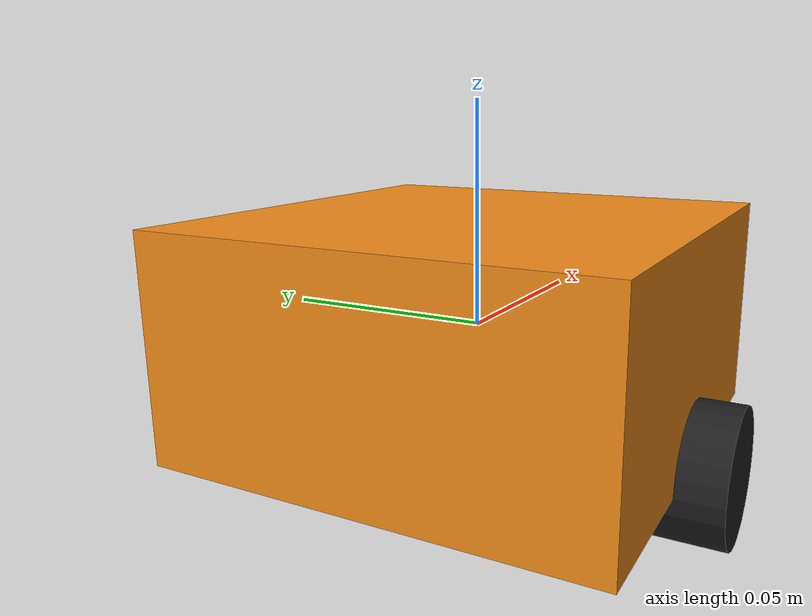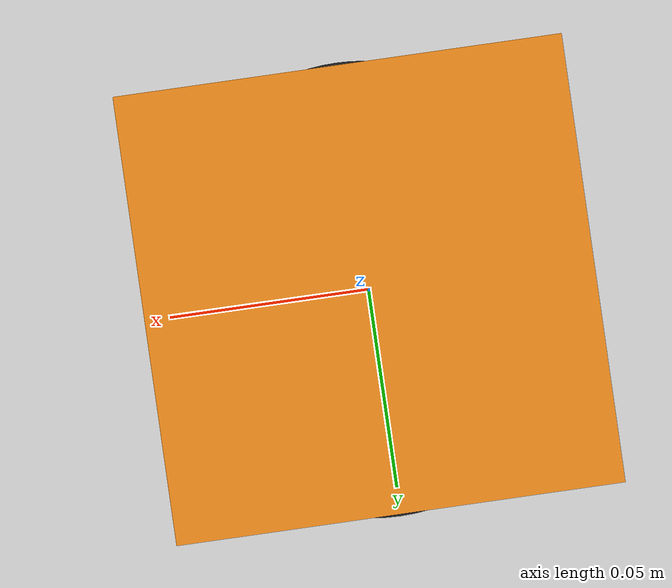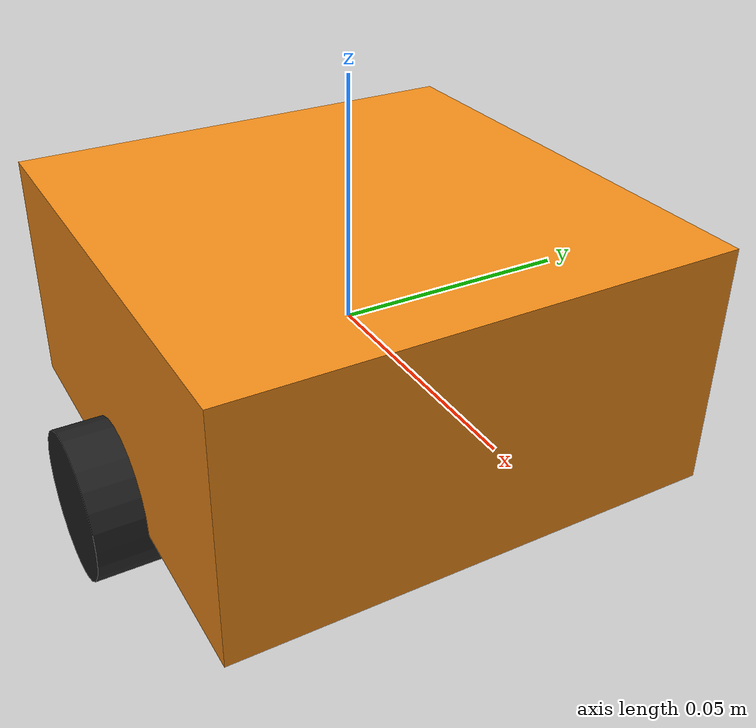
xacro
<?xml version="1.0"?>
<!-- Basic differential drive mobile base -->
<robot xmlns:xacro="http://www.ros.org/wiki/xacro" name="takagon">
  <!-- Enable setting arguments from the launch file -->
  <xacro:arg name="prefix" default=""/>

  <xacro:include filename="$(find inverted_pendulum_control)/config/inverted_pendulum.urdf.xacro"/>

  <xacro:include filename="$(find inverted_pendulum_control)/config/inverted_pendulum.materials.xacro" />

  <xacro:include filename="$(find inverted_pendulum_control)/config/inverted_pendulum_system.ros2_control.xacro"/>

  <xacro:inverted_pendulum prefix="$(arg prefix)"/>

  <xacro:inverted_pendulum_system name="InvertedPendulumSystem"/>

</robot>

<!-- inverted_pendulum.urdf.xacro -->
<robot xmlns:xacro="http://www.ros.org/wiki/xacro">

  <xacro:macro name="inverted_pendulum" params="prefix">

  <!-- Constants for robot dimensions -->
  <xacro:property name="PI" value="3.1415926535897931"/>
  <xacro:property name="base_mass" value="0.3" /> <!-- arbitrary value for base mass -->
  <xacro:property name="base_width" value="0.1" />
  <xacro:property name="base_length" value="0.1" />
  <xacro:property name="base_height" value="0.05" />
  <xacro:property name="wheel_mass" value="0.3" /> <!-- arbitrary value for wheel mass -->
  <xacro:property name="wheel_len" value="0.020" />
  <xacro:property name="wheel_radius" value="0.015" />
  <xacro:property name="caster_wheel_mass" value="0.1" /> <!-- arbitrary value for caster wheel mass -->
  <xacro:property name="caster_wheel_radius" value="0.015" />
  <xacro:property name="z_offset" value="-${base_height/2}" /> <!-- Space btw top of beam and the each joint -->

  <!-- Base Link -->
  <link name="${prefix}base_link">
    <collision>
      <origin xyz="0 0 0" rpy="0 0 0"/>
      <geometry>
        <box size="${base_width} ${base_length} ${base_height}"/>
      </geometry>
    </collision>

    <visual>
      <origin xyz="0 0 0" rpy="0 0 0"/>
      <geometry>
        <box size="${base_width} ${base_length} ${base_height}"/>
      </geometry>
      <material name="orange"/>
    </visual>

    <inertial>
      <origin xyz="0 0 0" rpy="0 0 0"/>
      <mass value="${base_mass}"/>
      <inertia
        ixx="${base_mass / 12.0 * (base_length*base_length + base_height*base_height)}" ixy="0.0" ixz="0.0"
        iyy="${base_mass / 12.0 * (base_height*base_height + base_width*base_width)}" iyz="0.0"
        izz="${base_mass / 12.0 * (base_width*base_width + base_length*base_length)}"/>
      </inertial>
    </link>

    <joint name="${prefix}left_wheel_joint" type="continuous">
      <parent link="${prefix}base_link"/>
      <child link="${prefix}left_wheel"/>
      <origin xyz="0 -${base_width/2} ${z_offset}" rpy="0 0 0"/>
      <axis xyz="0 1 0"/>
      <dynamics damping="0.2"/>
    </joint>

    <!-- left wheel Link -->
    <link name="${prefix}left_wheel">
      <collision>
        <origin xyz="0 0 0" rpy="${PI/2} 0 0"/>
        <geometry>
          <cylinder length="${wheel_len}" radius="${wheel_radius}"/>
        </geometry>
      </collision>

      <visual>
        <origin xyz="0 0 0" rpy="${PI/2} 0 0"/>
        <geometry>
          <cylinder length="${wheel_len}" radius="${wheel_radius}"/>
        </geometry>
        <material name="black"/>
      </visual>

      <inertial>
        <origin xyz="0 0 0" rpy="${PI/2} 0 0"/>
        <mass value="${wheel_mass}"/>
        <inertia
          ixx="${wheel_mass / 12.0 * (3*wheel_radius + wheel_len*wheel_len)}" ixy="0.0" ixz="0.0"
          iyy="${wheel_mass / 12.0 * wheel_radius*wheel_radius}" iyz="0.0"
          izz="${wheel_mass / 12.0 * wheel_radius*wheel_radius}"/>
        </inertial>
      </link>

    <joint name="${prefix}right_wheel_joint" type="continuous">
      <parent link="${prefix}base_link"/>
      <child link="${prefix}right_wheel"/>
      <origin xyz="0 ${base_width/2} ${z_offset}" rpy="0 0 0"/>
      <axis xyz="0 1 0"/>
      <dynamics damping="0.2"/>
    </joint>

    <!-- right wheel Link -->
    <link name="${prefix}right_wheel">
      <collision>
        <origin xyz="0 0 0" rpy="${PI/2} 0 0"/>
        <geometry>
          <cylinder length="${wheel_len}" radius="${wheel_radius}"/>
        </geometry>
      </collision>

      <visual>
        <origin xyz="0 0 0" rpy="${PI/2} 0 0"/>
        <geometry>
          <cylinder length="${wheel_len}" radius="${wheel_radius}"/>
        </geometry>
        <material name="black"/>
      </visual>

      <inertial>
        <origin xyz="0 0 0" rpy="${PI/2} 0 0"/>
        <mass value="${wheel_mass}"/>
        <inertia
          ixx="${wheel_mass / 12.0 * (3*wheel_radius + wheel_len*wheel_len)}" ixy="0.0" ixz="0.0"
          iyy="${wheel_mass / 12.0 * wheel_radius*wheel_radius}" iyz="0.0"
          izz="${wheel_mass / 12.0 * wheel_radius*wheel_radius}"/>
        </inertial>
      </link>

  </xacro:macro>

</robot>
